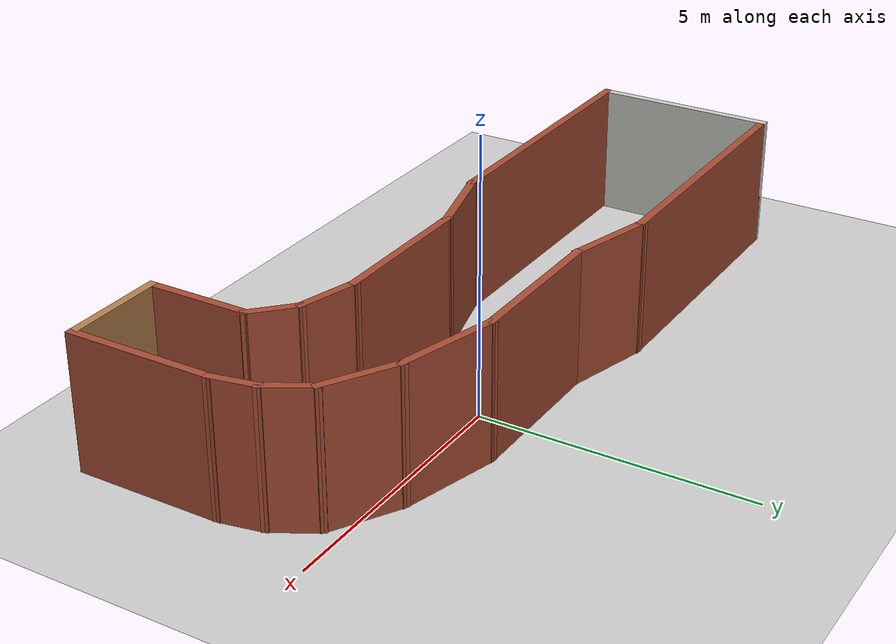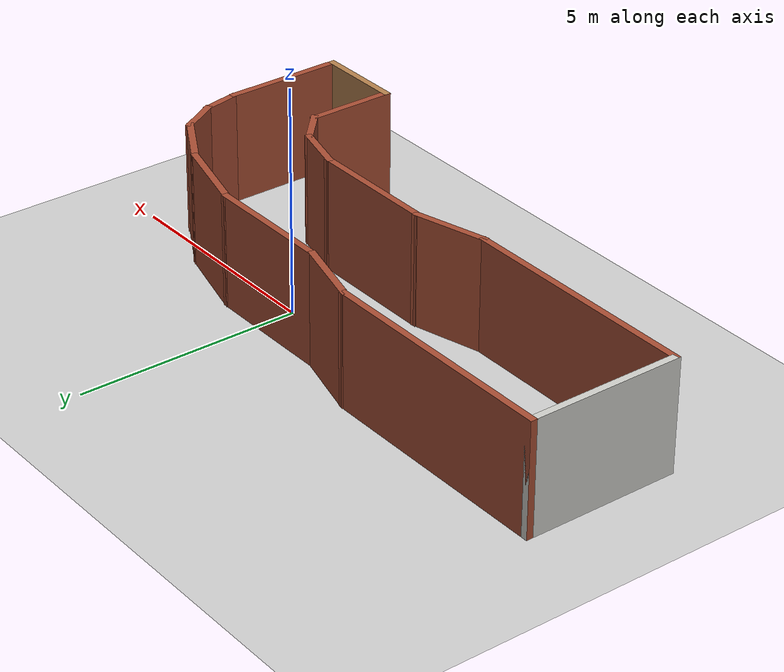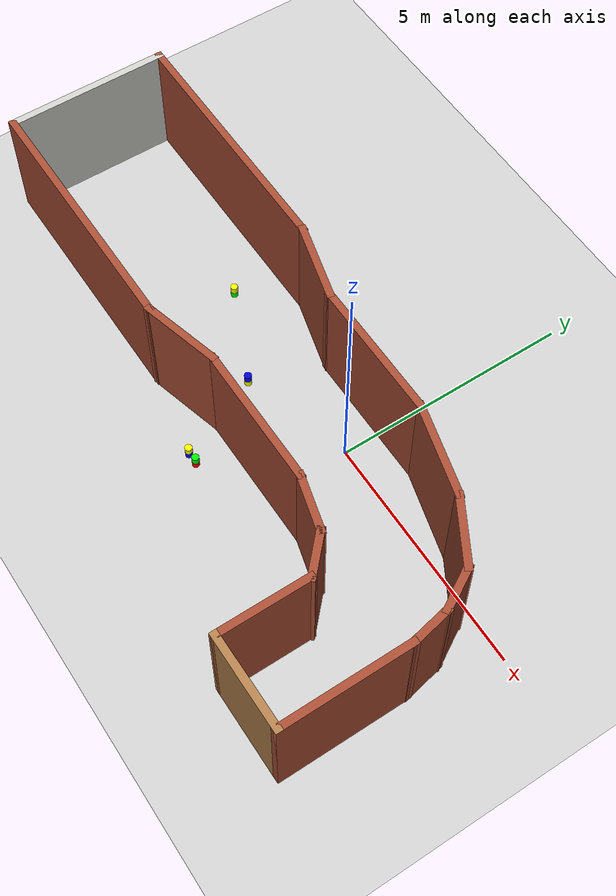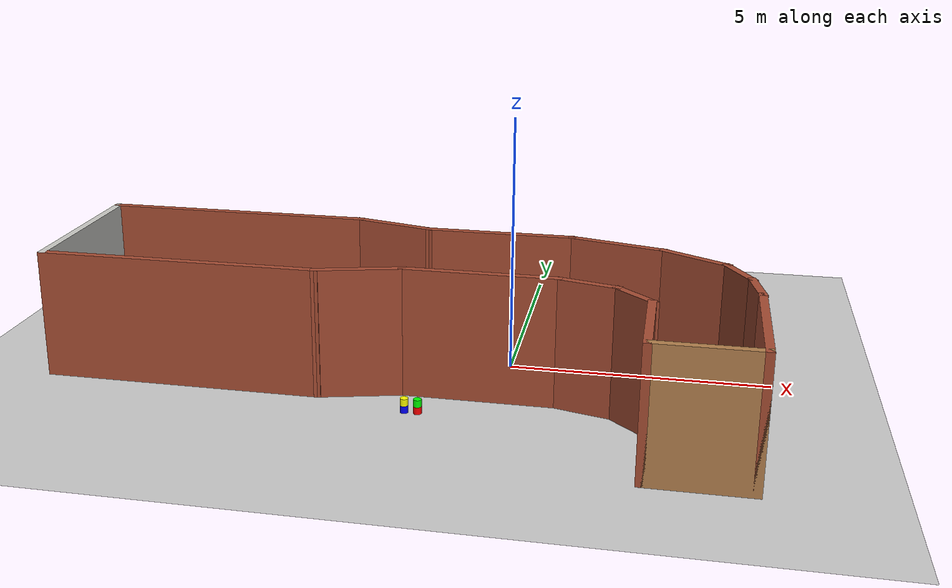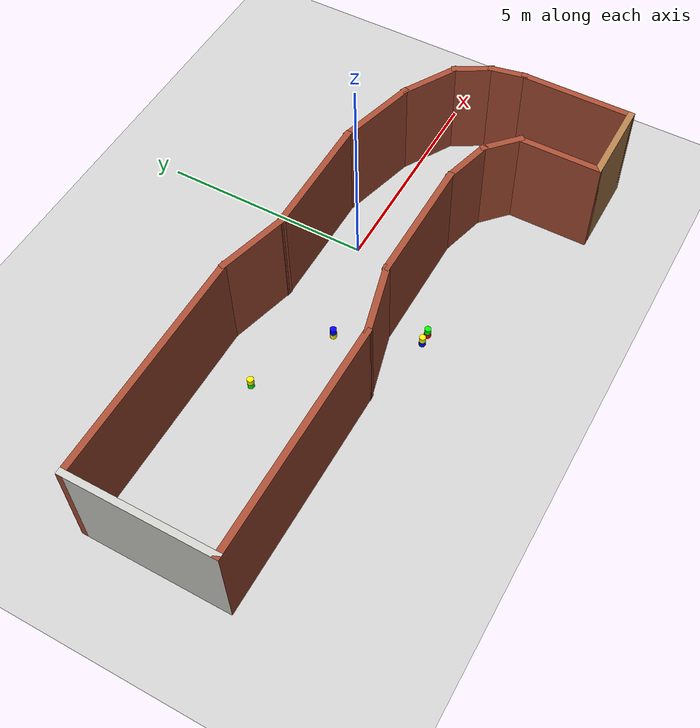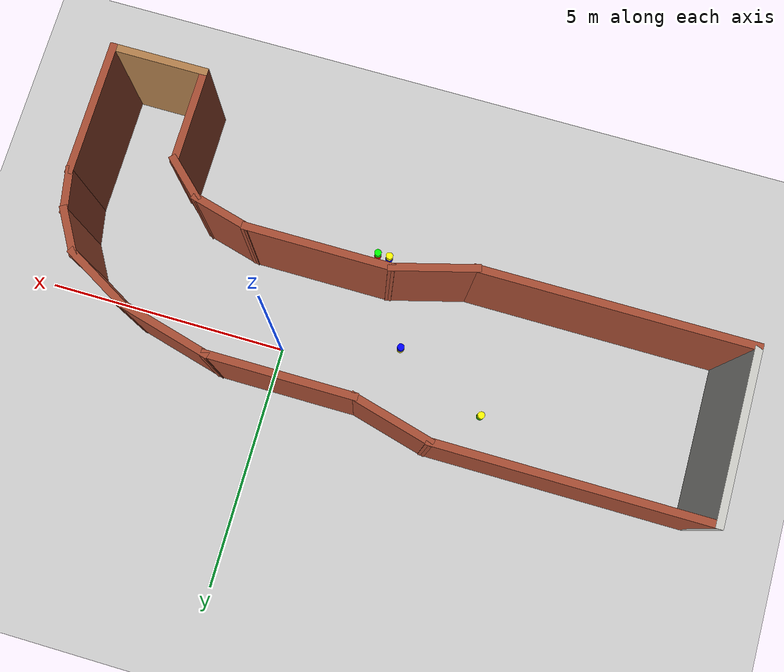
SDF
<sdf version="1.4">
  <world name="default">

    <scene>
      <ambient>0.4 0.4 0.4 1</ambient>
      <background>0.7 0.7 0.7 1</background>
      <shadows>true</shadows>
    </scene>

    <!-- A global light source -->
    <include>
      <uri>model://sun</uri>
    </include>

    <!-- A ground plane -->
    <include>
      <uri>model://ground_plane</uri>
    </include>

    <!-- My Maze -->
    <include>
      <uri>model://maze_2</uri>
	    <pose>-2.05 -1.60 0 0 0 0</pose>
    </include>

    <!-- My Beacons -->
    <include>
      <uri>model://beacon_RG</uri>
	    <pose>-1.35 -2.5 0 0 0 0</pose>
    </include>
    <include>
      <uri>model://beacon_GY</uri>
	    <pose>-4.3 0.2 0 0 0 0</pose>
    </include>
    <include>
      <uri>model://beacon_BY</uri>
	    <pose>-1.6 -2.5 0 0 0 0</pose>
    </include>
    <include>
      <uri>model://beacon_YB</uri>
	    <pose>-2.35 -0.7 0 0 0 0</pose>
    </include>

    <physics type="ode">
      <real_time_update_rate>1000.0</real_time_update_rate>
      <max_step_size>0.001</max_step_size>
      <real_time_factor>1</real_time_factor>
      <ode>
        <solver>
          <type>quick</type>
          <iters>150</iters>
          <precon_iters>0</precon_iters>
          <sor>1.400000</sor>
          <use_dynamic_moi_rescaling>1</use_dynamic_moi_rescaling>
        </solver>
        <constraints>
          <cfm>0.00001</cfm>
          <erp>0.2</erp>
          <contact_max_correcting_vel>2000.000000</contact_max_correcting_vel>
          <contact_surface_layer>0.01000</contact_surface_layer>
        </constraints>
      </ode>
    </physics>
  </world>

</sdf>

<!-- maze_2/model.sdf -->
<sdf version='1.5'>
  <model name='maze_2'>
    <pose frame=''>4.50476 -4.26739 0 0 -0 0</pose>
    <link name='Wall_15'>
      <collision name='Wall_15_Collision'>
        <geometry>
          <box>
            <size>5.5 0.15 2.5</size>
          </box>
        </geometry>
        <pose frame=''>0 0 1.25 0 -0 0</pose>
      </collision>
      <visual name='Wall_15_Visual'>
        <pose frame=''>0 0 1.25 0 -0 0</pose>
        <geometry>
          <box>
            <size>5.5 0.15 2.5</size>
          </box>
        </geometry>
        <material>
          <script>
            <uri>file://media/materials/scripts/gazebo.material</uri>
            <name>Gazebo/Bricks</name>
          </script>
          <ambient>1 1 1 1</ambient>
        </material>
      </visual>
      <pose frame=''>-3.96976 -0.522612 0 0 -0 0</pose>
    </link>
    <link name='Wall_19'>
      <collision name='Wall_19_Collision'>
        <geometry>
          <box>
            <size>1.75 0.15 2.5</size>
          </box>
        </geometry>
        <pose frame=''>0 0 1.25 0 -0 0</pose>
      </collision>
      <visual name='Wall_19_Visual'>
        <pose frame=''>0 0 1.25 0 -0 0</pose>
        <geometry>
          <box>
            <size>1.75 0.15 2.5</size>
          </box>
        </geometry>
        <material>
          <script>
            <uri>file://media/materials/scripts/gazebo.material</uri>
            <name>Gazebo/Bricks</name>
          </script>
          <ambient>1 1 1 1</ambient>
        </material>
      </visual>
      <pose frame=''>-0.522019 -0.315557 0 0 -0 0.261799</pose>
    </link>
    <link name='Wall_2'>
      <collision name='Wall_2_Collision'>
        <geometry>
          <box>
            <size>3.5 0.15 2.5</size>
          </box>
        </geometry>
        <pose frame=''>0 0 1.25 0 -0 0</pose>
      </collision>
      <visual name='Wall_2_Visual'>
        <pose frame=''>0 0 1.25 0 -0 0</pose>
        <geometry>
          <box>
            <size>3.5 0.15 2.5</size>
          </box>
        </geometry>
        <material>
          <script>
            <uri>file://media/materials/scripts/gazebo.material</uri>
            <name>Gazebo/CeilingTiled</name>
          </script>
          <ambient>1 1 1 1</ambient>
        </material>
      </visual>
      <pose frame=''>-6.64476 1.15239 0 0 0 -1.5708</pose>
    </link>
    <link name='Wall_21'>
      <collision name='Wall_21_Collision'>
        <geometry>
          <box>
            <size>1.75 0.15 2.5</size>
          </box>
        </geometry>
        <pose frame=''>0 0 1.25 0 -0 0</pose>
      </collision>
      <visual name='Wall_21_Visual'>
        <pose frame=''>0 0 1.25 0 -0 0</pose>
        <geometry>
          <box>
            <size>1.75 0.15 2.5</size>
          </box>
        </geometry>
        <material>
          <script>
            <uri>file://media/materials/scripts/gazebo.material</uri>
            <name>Gazebo/Bricks</name>
          </script>
          <ambient>1 1 1 1</ambient>
        </material>
      </visual>
      <pose frame=''>-0.522019 2.62033 0 0 0 -0.261799</pose>
    </link>
    <link name='Wall_26'>
      <collision name='Wall_26_Collision'>
        <geometry>
          <box>
            <size>3 0.15 2.5</size>
          </box>
        </geometry>
        <pose frame=''>0 0 1.25 0 -0 0</pose>
      </collision>
      <visual name='Wall_26_Visual'>
        <pose frame=''>0 0 1.25 0 -0 0</pose>
        <geometry>
          <box>
            <size>3 0.15 2.5</size>
          </box>
        </geometry>
        <material>
          <script>
            <uri>file://media/materials/scripts/gazebo.material</uri>
            <name>Gazebo/Bricks</name>
          </script>
          <ambient>1 1 1 1</ambient>
        </material>
      </visual>
      <pose frame=''>1.67572 2.41328 0 0 -0 0</pose>
    </link>
    <link name='Wall_28'>
      <collision name='Wall_28_Collision'>
        <geometry>
          <box>
            <size>3 0.15 2.5</size>
          </box>
        </geometry>
        <pose frame=''>0 0 1.25 0 -0 0</pose>
      </collision>
      <visual name='Wall_28_Visual'>
        <pose frame=''>0 0 1.25 0 -0 0</pose>
        <geometry>
          <box>
            <size>3 0.15 2.5</size>
          </box>
        </geometry>
        <material>
          <script>
            <uri>file://media/materials/scripts/gazebo.material</uri>
            <name>Gazebo/Bricks</name>
          </script>
          <ambient>1 1 1 1</ambient>
        </material>
      </visual>
      <pose frame=''>1.67572 -0.108502 0 0 -0 0</pose>
    </link>
    <link name='Wall_30'>
      <collision name='Wall_30_Collision'>
        <geometry>
          <box>
            <size>1.25 0.15 2.5</size>
          </box>
        </geometry>
        <pose frame=''>0 0 1.25 0 -0 0</pose>
      </collision>
      <visual name='Wall_30_Visual'>
        <pose frame=''>0 0 1.25 0 -0 0</pose>
        <geometry>
          <box>
            <size>1.25 0.15 2.5</size>
          </box>
        </geometry>
        <material>
          <script>
            <uri>file://media/materials/scripts/gazebo.material</uri>
            <name>Gazebo/Bricks</name>
          </script>
          <ambient>1 1 1 1</ambient>
        </material>
      </visual>
      <pose frame=''>3.63198 -0.250852 0 0 0 -0.261799</pose>
    </link>
    <link name='Wall_31'>
      <collision name='Wall_31_Collision'>
        <geometry>
          <box>
            <size>1.02508 0.15 2.5</size>
          </box>
        </geometry>
        <pose frame=''>0 0 1.25 0 -0 0</pose>
      </collision>
      <visual name='Wall_31_Visual'>
        <pose frame=''>0 0 1.25 0 -0 0</pose>
        <geometry>
          <box>
            <size>1.02508 0.15 2.5</size>
          </box>
        </geometry>
        <material>
          <script>
            <uri>file://media/materials/scripts/gazebo.material</uri>
            <name>Gazebo/Bricks</name>
          </script>
          <ambient>1 1 1 1</ambient>
        </material>
      </visual>
      <pose frame=''>4.48125 -0.693723 0 0 0 -0.757129</pose>
    </link>
    <link name='Wall_32'>
      <collision name='Wall_32_Collision'>
        <geometry>
          <box>
            <size>2 0.15 2.5</size>
          </box>
        </geometry>
        <pose frame=''>0 0 1.25 0 -0 0</pose>
      </collision>
      <visual name='Wall_32_Visual'>
        <pose frame=''>0 0 1.25 0 -0 0</pose>
        <geometry>
          <box>
            <size>2 0.15 2.5</size>
          </box>
        </geometry>
        <material>
          <script>
            <uri>file://media/materials/scripts/gazebo.material</uri>
            <name>Gazebo/Bricks</name>
          </script>
          <ambient>1 1 1 1</ambient>
        </material>
      </visual>
      <pose frame=''>4.78177 -1.91924 0 0 0 -1.5708</pose>
    </link>
    <link name='Wall_34'>
      <collision name='Wall_34_Collision'>
        <geometry>
          <box>
            <size>2 0.15 2.5</size>
          </box>
        </geometry>
        <pose frame=''>0 0 1.25 0 -0 0</pose>
      </collision>
      <visual name='Wall_34_Visual'>
        <pose frame=''>0 0 1.25 0 -0 0</pose>
        <geometry>
          <box>
            <size>2 0.15 2.5</size>
          </box>
        </geometry>
        <material>
          <script>
            <uri>file://media/materials/scripts/gazebo.material</uri>
            <name>Gazebo/Bricks</name>
          </script>
          <ambient>1 1 1 1</ambient>
        </material>
      </visual>
      <pose frame=''>3.9942 2.17387 0 0 0 -0.261799</pose>
    </link>
    <link name='Wall_35'>
      <collision name='Wall_35_Collision'>
        <geometry>
          <box>
            <size>1.5 0.15 2.5</size>
          </box>
        </geometry>
        <pose frame=''>0 0 1.25 0 -0 0</pose>
      </collision>
      <visual name='Wall_35_Visual'>
        <pose frame=''>0 0 1.25 0 -0 0</pose>
        <geometry>
          <box>
            <size>1.5 0.15 2.5</size>
          </box>
        </geometry>
        <material>
          <script>
            <uri>file://media/materials/scripts/gazebo.material</uri>
            <name>Gazebo/Bricks</name>
          </script>
          <ambient>1 1 1 1</ambient>
        </material>
      </visual>
      <pose frame=''>5.47225 1.59696 0 0 0 -0.523599</pose>
    </link>
    <link name='Wall_36'>
      <collision name='Wall_36_Collision'>
        <geometry>
          <box>
            <size>1 0.15 2.5</size>
          </box>
        </geometry>
        <pose frame=''>0 0 1.25 0 -0 0</pose>
      </collision>
      <visual name='Wall_36_Visual'>
        <pose frame=''>0 0 1.25 0 -0 0</pose>
        <geometry>
          <box>
            <size>1 0.15 2.5</size>
          </box>
        </geometry>
        <material>
          <script>
            <uri>file://media/materials/scripts/gazebo.material</uri>
            <name>Gazebo/Bricks</name>
          </script>
          <ambient>1 1 1 1</ambient>
        </material>
      </visual>
      <pose frame=''>6.26932 0.891401 0 0 0 -1.0472</pose>
    </link>
    <link name='Wall_39'>
      <collision name='Wall_39_Collision'>
        <geometry>
          <box>
            <size>2 0.15 2.5</size>
          </box>
        </geometry>
        <pose frame=''>0 0 1.25 0 -0 0</pose>
      </collision>
      <visual name='Wall_39_Visual'>
        <pose frame=''>0 0 1.25 0 -0 0</pose>
        <geometry>
          <box>
            <size>2 0.15 2.5</size>
          </box>
        </geometry>
        <material>
          <script>
            <uri>file://media/materials/scripts/gazebo.material</uri>
            <name>Gazebo/Wood</name>
          </script>
          <ambient>1 1 1 1</ambient>
        </material>
      </visual>
      <pose frame=''>5.70677 -2.84424 0 0 -0 0</pose>
    </link>
    <link name='Wall_4'>
      <collision name='Wall_4_Collision'>
        <geometry>
          <box>
            <size>5.5 0.15 2.5</size>
          </box>
        </geometry>
        <pose frame=''>0 0 1.25 0 -0 0</pose>
      </collision>
      <visual name='Wall_4_Visual'>
        <pose frame=''>0 0 1.25 0 -0 0</pose>
        <geometry>
          <box>
            <size>5.5 0.15 2.5</size>
          </box>
        </geometry>
        <material>
          <script>
            <uri>file://media/materials/scripts/gazebo.material</uri>
            <name>Gazebo/Bricks</name>
          </script>
          <ambient>1 1 1 1</ambient>
        </material>
      </visual>
      <pose frame=''>-3.96976 2.82739 0 0 -0 0</pose>
    </link>
    <link name='Wall_41'>
      <collision name='Wall_41_Collision'>
        <geometry>
          <box>
            <size>2.75 0.15 2.5</size>
          </box>
        </geometry>
        <pose frame=''>0 0 1.25 0 -0 0</pose>
      </collision>
      <visual name='Wall_41_Visual'>
        <pose frame=''>0 0 1.25 0 -0 0</pose>
        <geometry>
          <box>
            <size>2.75 0.15 2.5</size>
          </box>
        </geometry>
        <material>
          <script>
            <uri>file://media/materials/scripts/gazebo.material</uri>
            <name>Gazebo/Bricks</name>
          </script>
          <ambient>1 1 1 1</ambient>
        </material>
      </visual>
      <pose frame=''>6.63177 -1.54424 0 0 -0 1.5708</pose>
    </link>
    <link name='Wall_43'>
      <collision name='Wall_43_Collision'>
        <geometry>
          <box>
            <size>0.932094 0.15 2.5</size>
          </box>
        </geometry>
        <pose frame=''>0 0 1.25 0 -0 0</pose>
      </collision>
      <visual name='Wall_43_Visual'>
        <pose frame=''>0 0 1.25 0 -0 0</pose>
        <geometry>
          <box>
            <size>0.932094 0.15 2.5</size>
          </box>
        </geometry>
        <material>
          <script>
            <uri>file://media/materials/scripts/gazebo.material</uri>
            <name>Gazebo/Bricks</name>
          </script>
          <ambient>1 1 1 1</ambient>
        </material>
      </visual>
      <pose frame=''>6.5568 0.139549 0 0 0 -1.37787</pose>
    </link>
    <static>1</static>
  </model>
</sdf>

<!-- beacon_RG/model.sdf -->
<sdf version='1.4'>
  <model name="beacon_RG">
	<static>true</static>
          <link name='chassis_lower'>
            <pose>0 0 0.07 0 0 0</pose>

            <collision name='collision'>
              <geometry>
                <cylinder>
                  <radius>.075</radius>
		  <length>.140</length>
                </cylinder>
              </geometry>
            </collision>

            <visual name='visual'>
              <geometry>
                <cylinder>
                  <radius>.075</radius>
		  <length>.140</length>
                </cylinder>
              </geometry>
        	<material>
          	  <ambient>1 0 0 1</ambient>
          	  <diffuse>1 0 0 1</diffuse>
          	  <specular>0.1 0.1 0.1 1</specular>
         	  <emissive>0 0 0 0</emissive>
        	</material>
            </visual>
          </link>

          <link name='chassis_upper'>
            <pose>0 0 0.21 0 0 0</pose>

            <collision name='collision'>
              <geometry>
                <cylinder>
                  <radius>.075</radius>
		  <length>.140</length>
                </cylinder>
              </geometry>
            </collision>

            <visual name='visual'>
              <geometry>
                <cylinder>
                  <radius>.075</radius>
		  <length>.140</length>
                </cylinder>
              </geometry>
        	<material>
          	  <ambient>0 1 0 1</ambient>
          	  <diffuse>0 1 0 1</diffuse>
          	  <specular>0.1 0.1 0.1 1</specular>
         	  <emissive>0 0 0 0</emissive>
        	</material>
            </visual>
          </link>

  </model>
</sdf>

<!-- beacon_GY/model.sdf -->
<sdf version='1.4'>
  <model name="beacon_GY">
	<static>true</static>
          <link name='chassis_lower'>
            <pose>0 0 0.07 0 0 0</pose>

            <collision name='collision'>
              <geometry>
                <cylinder>
                  <radius>.075</radius>
		  <length>.140</length>
                </cylinder>
              </geometry>
            </collision>

            <visual name='visual'>
              <geometry>
                <cylinder>
                  <radius>.075</radius>
		  <length>.140</length>
                </cylinder>
              </geometry>
        	<material>
          	  <ambient>0 1 0 1</ambient>
          	  <diffuse>0 1 0 1</diffuse>
          	  <specular>0.1 0.1 0.1 1</specular>
         	  <emissive>0 0 0 0</emissive>
        	</material>
            </visual>
          </link>

          <link name='chassis_upper'>
            <pose>0 0 0.21 0 0 0</pose>

            <collision name='collision'>
              <geometry>
                <cylinder>
                  <radius>.075</radius>
		  <length>.140</length>
                </cylinder>
              </geometry>
            </collision>

            <visual name='visual'>
              <geometry>
                <cylinder>
                  <radius>.075</radius>
		  <length>.140</length>
                </cylinder>
              </geometry>
        	<material>
          	  <ambient>1 1 0 1</ambient>
          	  <diffuse>1 1 0 1</diffuse>
          	  <specular>0.1 0.1 0.1 1</specular>
         	  <emissive>0 0 0 0</emissive>
        	</material>
            </visual>
          </link>

  </model>
</sdf>

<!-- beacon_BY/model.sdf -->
<sdf version='1.4'>
  <model name="beacon_BY">
	<static>true</static>
          <link name='chassis_lower'>
            <pose>0 0 0.07 0 0 0</pose>

            <collision name='collision'>
              <geometry>
                <cylinder>
                  <radius>.075</radius>
		  <length>.140</length>
                </cylinder>
              </geometry>
            </collision>

            <visual name='visual'>
              <geometry>
                <cylinder>
                  <radius>.075</radius>
		  <length>.140</length>
                </cylinder>
              </geometry>
        	<material>
          	  <ambient>0 0 1 1</ambient>
          	  <diffuse>0 0 1 1</diffuse>
          	  <specular>0.1 0.1 0.1 1</specular>
         	  <emissive>0 0 0 0</emissive>
        	</material>
            </visual>
          </link>

          <link name='chassis_upper'>
            <pose>0 0 0.21 0 0 0</pose>

            <collision name='collision'>
              <geometry>
                <cylinder>
                  <radius>.075</radius>
		  <length>.140</length>
                </cylinder>
              </geometry>
            </collision>

            <visual name='visual'>
              <geometry>
                <cylinder>
                  <radius>.075</radius>
		  <length>.140</length>
                </cylinder>
              </geometry>
        	<material>
          	  <ambient>1 1 0 1</ambient>
          	  <diffuse>1 1 0 1</diffuse>
          	  <specular>0.1 0.1 0.1 1</specular>
         	  <emissive>0 0 0 0</emissive>
        	</material>
            </visual>
          </link>

  </model>
</sdf>

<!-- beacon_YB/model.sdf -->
<sdf version='1.4'>
  <model name="beacon_YB">
	<static>true</static>
          <link name='chassis_lower'>
            <pose>0 0 0.07 0 0 0</pose>

            <collision name='collision'>
              <geometry>
                <cylinder>
                  <radius>.075</radius>
		  <length>.140</length>
                </cylinder>
              </geometry>
            </collision>

            <visual name='visual'>
              <geometry>
                <cylinder>
                  <radius>.075</radius>
		  <length>.140</length>
                </cylinder>
              </geometry>
        	<material>
          	  <ambient>1 1 0 1</ambient>
          	  <diffuse>1 1 0 1</diffuse>
          	  <specular>0.1 0.1 0.1 1</specular>
         	  <emissive>0 0 0 0</emissive>
        	</material>
            </visual>
          </link>

          <link name='chassis_upper'>
            <pose>0 0 0.21 0 0 0</pose>

            <collision name='collision'>
              <geometry>
                <cylinder>
                  <radius>.075</radius>
		  <length>.140</length>
                </cylinder>
              </geometry>
            </collision>

            <visual name='visual'>
              <geometry>
                <cylinder>
                  <radius>.075</radius>
		  <length>.140</length>
                </cylinder>
              </geometry>
        	<material>
          	  <ambient>0 0 1 1</ambient>
          	  <diffuse>0 0 1 1</diffuse>
          	  <specular>0.1 0.1 0.1 1</specular>
         	  <emissive>0 0 0 0</emissive>
        	</material>
            </visual>
          </link>

  </model>
</sdf>
